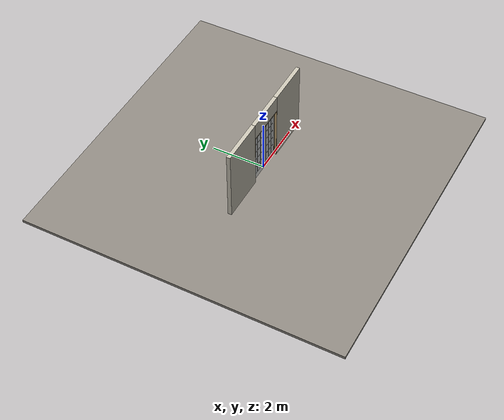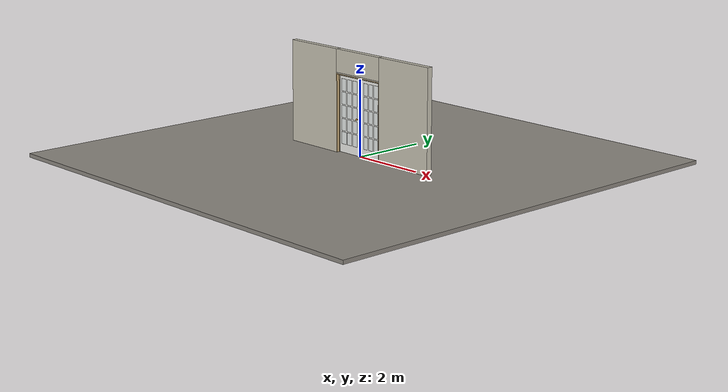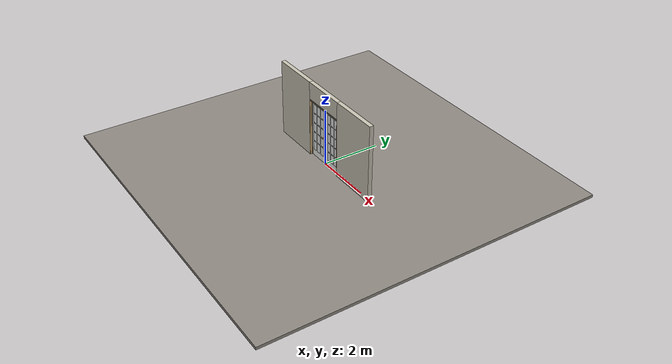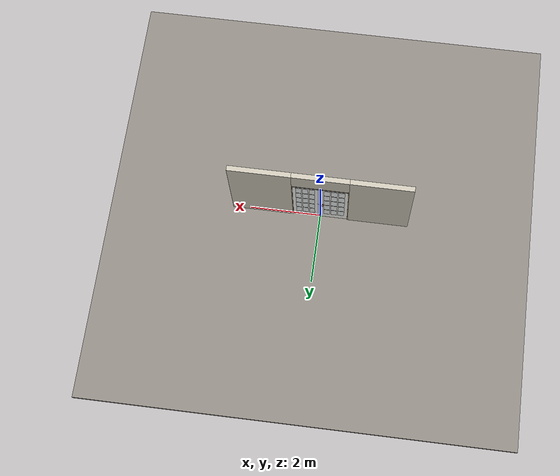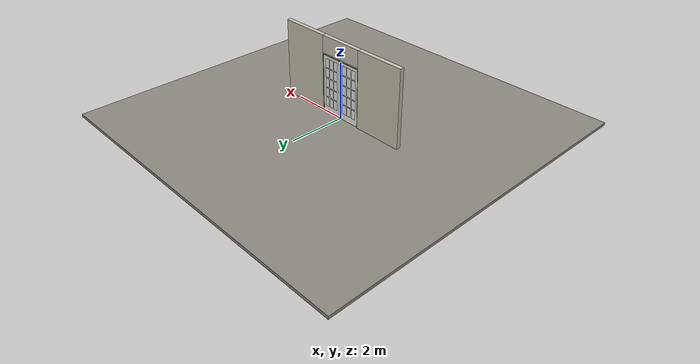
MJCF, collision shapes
<?xml version="1.0" ?>
<mujoco model="db0577_swing_double_full">
  <compiler angle="radian" meshdir="../../hardware" texturedir="../../textures" autolimits="true" inertiafromgeom="false"/>
  <option timestep="0.002" integrator="implicitfast" cone="elliptic" impratio="10" noslip_iterations="3">
    <flag multiccd="enable"/>
  </option>
  <size memory="16M"/>
  <default>
    <geom condim="4" solref="0.005 1" solimp="0.95 0.99 0.001"/>
    <joint solreflimit="0.005 1" solimplimit="0.95 0.99 0.001"/>
    <tendon solreflimit="0.005 1"/>
    <equality solref="0.002 1"/>
  </default>
  <visual>
    <headlight ambient="0.4 0.4 0.4" diffuse="0.7 0.7 0.7" specular="0.2 0.2 0.2"/>
    <quality shadowsize="4096"/>
    <map znear="0.01" zfar="60"/>
  </visual>
  <asset>
    <mesh name="hinge_2af0f4d6ca" file="hinge_2af0f4d6ca.obj"/>
    <mesh name="hinge_jamb_c0c0a62ada" file="hinge_jamb_c0c0a62ada.obj"/>
    <mesh name="knob_d1888f6f03" file="knob_d1888f6f03.obj"/>
    <material name="mat_floor" rgba="0.55 0.53 0.5 1" specular="0.2" shininess="0.15" reflectance="0"/>
    <material name="mat_wall" rgba="0.78 0.76 0.7 1" specular="0.2" shininess="0.1" reflectance="0"/>
    <material name="mat_leaf_a" rgba="0.93 0.93 0.91 1" specular="0.2" shininess="0.42" reflectance="0"/>
    <material name="mat_glass" rgba="0.85 0.92 0.95 0.25" specular="0.2" shininess="0.95" reflectance="0.1"/>
    <material name="mat_hinge" rgba="0.65 0.66 0.68 1" specular="0.74" shininess="0.5" reflectance="0.36"/>
    <material name="mat_op_brass" rgba="0.85 0.66 0.3 1" specular="0.8" shininess="0.75" reflectance="0.4"/>
    <material name="mat_trim" rgba="0.85 0.66 0.3 1" specular="0.8" shininess="0.75" reflectance="0.4"/>
    <material name="mat_bolt" rgba="0.85 0.66 0.3 1" specular="0.8" shininess="0.75" reflectance="0.4"/>
    <material name="mat_leaf_b" rgba="0.93 0.93 0.91 1" specular="0.2" shininess="0.42" reflectance="0"/>
    <material name="mat_frame" rgba="0.82 0.7 0.5 1" specular="0.2" shininess="0.45" reflectance="0"/>
    <material name="mat_astragal" rgba="0.8 0.81 0.83 1" specular="0.8" shininess="0.6" reflectance="0.4"/>
    <texture name="skybox" type="skybox" builtin="gradient" rgb1="0.6 0.7 0.85" rgb2="0.9 0.92 0.95" width="256" height="256"/>
  </asset>
  <worldbody>
    <light name="sun" pos="1.5 -2.5 4" dir="-0.3 0.5 -0.8" directional="true" diffuse="0.8 0.8 0.8" specular="0.3 0.3 0.3" castshadow="true"/>
    <light name="fill" pos="-1.5 2.5 3" dir="0.3 -0.5 -0.7" directional="true" diffuse="0.35 0.35 0.4" castshadow="false"/>
    <camera name="robot_view" pos="0 -2.572687 1.734312" xyaxes="1 0 0 0 0.26963 0.962964" fovy="52"/>
    <camera name="far_view" pos="0 2.511687 1.734312" xyaxes="-1 0 0 0 -0.26963 0.962964" fovy="52"/>
    <camera name="iso" pos="-1.932062 -2.165938 2.141063" xyaxes="0.741536 -0.670913 0 0.242917 0.268487 0.932151" fovy="46"/>
    <camera name="detail_handle" pos="0.1085 -0.8685 1.245" xyaxes="0.97561 0.219512 0 -0.070934 0.315262 0.94635" fovy="38"/>
    <geom name="floor" type="box" size="6 6 0.05" pos="0 0 -0.05" material="mat_floor" group="0" contype="1" conaffinity="1" friction="0.8 0.005 0.0001" density="2400"/>
    <geom name="wall_left" type="box" size="0.85725 0.0725 1.35" pos="-1.64275 -0.0305 1.35" material="mat_wall" group="0" contype="1" conaffinity="1" friction="0.6 0.005 0.0001" density="800"/>
    <geom name="wall_right" type="box" size="0.85725 0.0725 1.35" pos="1.64275 -0.0305 1.35" material="mat_wall" group="0" contype="1" conaffinity="1" friction="0.6 0.005 0.0001" density="800"/>
    <geom name="wall_header" type="box" size="0.7855 0.0725 0.303" pos="0 -0.0305 2.397" material="mat_wall" group="0" contype="1" conaffinity="1" friction="0.6 0.005 0.0001" density="800"/>
    <geom name="hinge_0_jamb" type="mesh" mesh="hinge_jamb_c0c0a62ada" pos="-0.7635 0.029 0.259" quat="0 1 0 0" material="mat_hinge" group="1" contype="0" conaffinity="0" density="7850"/>
    <geom name="hinge_1_jamb" type="mesh" mesh="hinge_jamb_c0c0a62ada" pos="-0.7635 0.029 1.025" quat="0 1 0 0" material="mat_hinge" group="1" contype="0" conaffinity="0" density="7850"/>
    <geom name="hinge_2_jamb" type="mesh" mesh="hinge_jamb_c0c0a62ada" pos="-0.7635 0.029 1.861" quat="0 1 0 0" material="mat_hinge" group="1" contype="0" conaffinity="0" density="7850"/>
    <geom name="hinge_0_jamb_2" type="mesh" mesh="hinge_jamb_c0c0a62ada" pos="0.7635 0.029 0.259" quat="0 0 0 1" material="mat_hinge" group="1" contype="0" conaffinity="0" density="7850"/>
    <geom name="hinge_1_jamb_2" type="mesh" mesh="hinge_jamb_c0c0a62ada" pos="0.7635 0.029 1.025" quat="0 0 0 1" material="mat_hinge" group="1" contype="0" conaffinity="0" density="7850"/>
    <geom name="hinge_2_jamb_2" type="mesh" mesh="hinge_jamb_c0c0a62ada" pos="0.7635 0.029 1.861" quat="0 0 0 1" material="mat_hinge" group="1" contype="0" conaffinity="0" density="7850"/>
    <geom name="jamb_l" type="box" size="0.0095 0.0725 1.0225" pos="-0.776 -0.0305 1.0225" material="mat_frame" group="0" contype="1" conaffinity="1" friction="0.6 0.005 0.0001" density="300"/>
    <geom name="jamb_r" type="box" size="0.0095 0.0725 1.0225" pos="0.776 -0.0305 1.0225" material="mat_frame" group="0" contype="1" conaffinity="1" friction="0.6 0.005 0.0001" density="300"/>
    <geom name="jamb_head" type="box" size="0.7855 0.0725 0.0095" pos="0 -0.0305 2.0545" material="mat_frame" group="0" contype="1" conaffinity="1" friction="0.6 0.005 0.0001" density="300"/>
    <geom name="head_stud" type="box" size="0.7855 0.0725 0.015" pos="0 -0.0305 2.079" material="mat_wall" group="0" contype="1" conaffinity="1" friction="0.6 0.005 0.0001" density="500"/>
    <geom name="stop_l" type="box" size="0.015 0.006 1.0225" pos="-0.7515 -0.0285 1.0225" material="mat_frame" group="0" contype="1" conaffinity="1" friction="0.6 0.005 0.0001" density="300"/>
    <geom name="stop_r" type="box" size="0.015 0.006 1.0225" pos="0.7515 -0.0285 1.0225" material="mat_frame" group="0" contype="1" conaffinity="1" friction="0.6 0.005 0.0001" density="300"/>
    <geom name="stop_head" type="box" size="0.7665 0.006 0.015" pos="0 -0.0285 2.03" material="mat_frame" group="0" contype="1" conaffinity="1" friction="0.6 0.005 0.0001" density="300"/>
    <site name="approach_point" pos="0 -1.5 0" quat="1 0 0 0" size="0.05" rgba="0.2 0.9 0.2 0.5" group="4"/>
    <site name="goal_point" pos="0 1.5 0" quat="1 0 0 0" size="0.05" rgba="0.2 0.9 0.2 0.5" group="4"/>
    <site name="door_plane_center" pos="0 0 1.0225" quat="1 0 0 0" size="0.02" rgba="0.2 0.9 0.2 0.5" group="4"/>
    <site name="approach_point_2" pos="0 -1.5 0" quat="1 0 0 0" size="0.05" rgba="0.2 0.9 0.2 0.5" group="4"/>
    <site name="goal_point_2" pos="0 1.5 0" quat="1 0 0 0" size="0.05" rgba="0.2 0.9 0.2 0.5" group="4"/>
    <site name="door_plane_center_2" pos="0 0 1.0225" quat="1 0 0 0" size="0.02" rgba="0.2 0.9 0.2 0.5" group="4"/>
    <site name="approach_point_3" pos="0 -1.5 0" quat="1 0 0 0" size="0.05" rgba="0.2 0.9 0.2 0.5" group="4"/>
    <site name="goal_point_3" pos="0 1.5 0" quat="1 0 0 0" size="0.05" rgba="0.2 0.9 0.2 0.5" group="4"/>
    <site name="door_plane_center_3" pos="0 0 1.0225" quat="1 0 0 0" size="0.02" rgba="0.2 0.9 0.2 0.5" group="4"/>
    <body name="leaf_a" pos="-0.7665 0 0">
      <inertial pos="0.367733 0.00068 1.026166" mass="22.820276" quat="0.500854 0.498462 -0.501514 0.499163" diaginertia="1.200973549 7.923948674 9.116973352"/>
      <joint name="leaf_a_hinge" type="hinge" axis="0 0 1" pos="0.003 0.029 0" limited="true" range="0 1.570796" damping="0.173726" frictionloss="0.287861" armature="0.02"/>
      <geom name="leaf_a_slab" type="box" size="0.381 0.022 1.016" pos="0.384 0 1.025" material="mat_leaf_a" group="0" contype="1" conaffinity="1" friction="0.4 0.005 0.0001" density="1"/>
      <geom name="leaf_a_glass_0" type="box" size="0.087 0.0228 0.158688" pos="0.18 0 0.391208" material="mat_glass" group="1" contype="0" conaffinity="0" density="1"/>
      <geom name="leaf_a_glass_1" type="box" size="0.087 0.0228 0.158688" pos="0.384 0 0.391208" material="mat_glass" group="1" contype="0" conaffinity="0" density="1"/>
      <geom name="leaf_a_glass_2" type="box" size="0.087 0.0228 0.158688" pos="0.588 0 0.391208" material="mat_glass" group="1" contype="0" conaffinity="0" density="1"/>
      <geom name="leaf_a_glass_3" type="box" size="0.087 0.0228 0.158688" pos="0.18 0 0.738584" material="mat_glass" group="1" contype="0" conaffinity="0" density="1"/>
      <geom name="leaf_a_glass_4" type="box" size="0.087 0.0228 0.158688" pos="0.384 0 0.738584" material="mat_glass" group="1" contype="0" conaffinity="0" density="1"/>
      <geom name="leaf_a_glass_5" type="box" size="0.087 0.0228 0.158688" pos="0.588 0 0.738584" material="mat_glass" group="1" contype="0" conaffinity="0" density="1"/>
      <geom name="leaf_a_glass_6" type="box" size="0.087 0.0228 0.158688" pos="0.18 0 1.08596" material="mat_glass" group="1" contype="0" conaffinity="0" density="1"/>
      <geom name="leaf_a_glass_7" type="box" size="0.087 0.0228 0.158688" pos="0.384 0 1.08596" material="mat_glass" group="1" contype="0" conaffinity="0" density="1"/>
      <geom name="leaf_a_glass_8" type="box" size="0.087 0.0228 0.158688" pos="0.588 0 1.08596" material="mat_glass" group="1" contype="0" conaffinity="0" density="1"/>
      <geom name="leaf_a_glass_9" type="box" size="0.087 0.0228 0.158688" pos="0.18 0 1.433336" material="mat_glass" group="1" contype="0" conaffinity="0" density="1"/>
      <geom name="leaf_a_glass_10" type="box" size="0.087 0.0228 0.158688" pos="0.384 0 1.433336" material="mat_glass" group="1" contype="0" conaffinity="0" density="1"/>
      <geom name="leaf_a_glass_11" type="box" size="0.087 0.0228 0.158688" pos="0.588 0 1.433336" material="mat_glass" group="1" contype="0" conaffinity="0" density="1"/>
      <geom name="leaf_a_glass_12" type="box" size="0.087 0.0228 0.158688" pos="0.18 0 1.780712" material="mat_glass" group="1" contype="0" conaffinity="0" density="1"/>
      <geom name="leaf_a_glass_13" type="box" size="0.087 0.0228 0.158688" pos="0.384 0 1.780712" material="mat_glass" group="1" contype="0" conaffinity="0" density="1"/>
      <geom name="leaf_a_glass_14" type="box" size="0.087 0.0228 0.158688" pos="0.588 0 1.780712" material="mat_glass" group="1" contype="0" conaffinity="0" density="1"/>
      <geom name="hinge_0" type="mesh" mesh="hinge_2af0f4d6ca" pos="0.003 0.029 0.259" quat="0 1 0 0" material="mat_hinge" group="1" contype="0" conaffinity="0" density="7850"/>
      <geom name="hinge_1" type="mesh" mesh="hinge_2af0f4d6ca" pos="0.003 0.029 1.025" quat="0 1 0 0" material="mat_hinge" group="1" contype="0" conaffinity="0" density="7850"/>
      <geom name="hinge_2" type="mesh" mesh="hinge_2af0f4d6ca" pos="0.003 0.029 1.861" quat="0 1 0 0" material="mat_hinge" group="1" contype="0" conaffinity="0" density="7850"/>
      <geom name="leaf_a_latch_bolt_faceplate" type="box" size="0.0006 0.01235 0.0267" pos="0.7644 0 0.965" material="mat_bolt" group="1" contype="0" conaffinity="0" density="8500"/>
      <site name="leaf_a_edge_mid" pos="0.765 0 1.016" quat="1 0 0 0" size="0.02" rgba="0.2 0.9 0.2 0.5" group="4"/>
      <body name="leaf_a_handle" pos="0.695 0 0.965">
        <inertial pos="0 0 0" mass="1.151952" quat="0.5 -0.5 0.5 -0.5" diaginertia="0.000312514 0.004264603 0.004264603"/>
        <joint name="leaf_a_handle_hinge" type="hinge" axis="0 -1 0" limited="true" range="0 0.87" damping="0.143614" frictionloss="0.038" stiffness="0.5" springref="-0.5" armature="0.01"/>
        <geom name="leaf_a_handle_spindle" type="cylinder" size="0.006 0.03" pos="0 0 0" quat="0.707107 -0.707107 0 0" material="mat_op_brass" group="1" contype="0" conaffinity="0" density="7850"/>
        <geom name="leaf_a_handle_knob_n" type="mesh" mesh="knob_d1888f6f03" pos="0 -0.022 0" quat="0.707107 0.707107 0 0" material="mat_op_brass" group="1" contype="0" conaffinity="0" density="3000"/>
        <geom name="leaf_a_handle_knob_col_n" type="sphere" size="0.0243" pos="0 -0.0685 0" material="mat_op_brass" group="0" contype="1" conaffinity="1" friction="0.9 0.01 0.0001" density="3000"/>
        <geom name="leaf_a_handle_knob_neck_n" type="cylinder" size="0.011 0.012" pos="0 -0.034 0" quat="0.707107 -0.707107 0 0" material="mat_op_brass" group="3" contype="1" conaffinity="1" rgba="0.8 0.3 0.3 0.25" friction="0.6 0.005 0.0001" density="3000"/>
        <geom name="leaf_a_handle_knob_p" type="mesh" mesh="knob_d1888f6f03" pos="0 0.022 0" quat="-0.707107 0.707107 0 0" material="mat_op_brass" group="1" contype="0" conaffinity="0" density="3000"/>
        <geom name="leaf_a_handle_knob_col_p" type="sphere" size="0.0243" pos="0 0.0685 0" material="mat_op_brass" group="0" contype="1" conaffinity="1" friction="0.9 0.01 0.0001" density="3000"/>
        <geom name="leaf_a_handle_knob_neck_p" type="cylinder" size="0.011 0.012" pos="0 0.034 0" quat="0.707107 -0.707107 0 0" material="mat_op_brass" group="3" contype="1" conaffinity="1" rgba="0.8 0.3 0.3 0.25" friction="0.6 0.005 0.0001" density="3000"/>
        <site name="leaf_a_handle_grip_n" pos="0 -0.0685 0" quat="1 0 0 0" size="0.012" rgba="0.2 0.9 0.2 0.5" group="4"/>
        <site name="leaf_a_handle_grip_p" pos="0 0.0685 0" quat="1 0 0 0" size="0.012" rgba="0.2 0.9 0.2 0.5" group="4"/>
      </body>
      <body name="leaf_a_latch_bolt" pos="0.765 0 0.965">
        <inertial pos="-0.00865 0 0" mass="0.041419" quat="0.92388 -0.382683 0 0" diaginertia="0.000000798 0.000005598 0.000005598"/>
        <joint name="leaf_a_latch_bolt_slide" type="slide" axis="-1 0 0" limited="true" range="0 0.0127" damping="2" frictionloss="0.3" stiffness="300" springref="-0.008333" armature="0.1"/>
        <geom name="leaf_a_latch_bolt_capsule" type="capsule" size="0.00635 0.015" pos="-0.00865 0 0" quat="0.707107 0 0.707107 0" material="mat_bolt" group="0" contype="1" conaffinity="1" friction="0.2 0.005 0.0001" density="8500"/>
      </body>
    </body>
    <body name="leaf_b" pos="0.7665 0 0">
      <inertial pos="-0.444785 -0.006881 1.0237" mass="22.172603" quat="0.491239 0.510524 -0.489208 0.50865" diaginertia="1.512829593 7.61874499 9.122233436"/>
      <joint name="leaf_b_hinge" type="hinge" axis="0 0 -1" pos="-0.003 0.029 0" limited="true" range="0 0.001" damping="0.173726" frictionloss="0.287861" armature="0.02"/>
      <geom name="leaf_b_edge_965_wall_n" type="box" size="0.03 0.007075 0.0167" pos="-0.735 -0.014925 0.965" material="mat_leaf_b" group="0" contype="1" conaffinity="1" friction="0.6 0.005 0.0001" density="1"/>
      <geom name="leaf_b_edge_965_wall_p" type="box" size="0.03 0.008 0.0167" pos="-0.735 0.01585 0.965" material="mat_leaf_b" group="0" contype="1" conaffinity="1" friction="0.6 0.005 0.0001" density="1"/>
      <geom name="leaf_b_edge_965_ramp" type="box" size="0.03 0.01649 0.0167" pos="-0.730861 0.026388 0.965" quat="0.977148 0 0 -0.212558" material="mat_leaf_b" group="0" contype="1" conaffinity="1" friction="0.12 0.005 0.0001" density="1"/>
      <geom name="leaf_b_edge_965_back" type="box" size="0.02165 0.00785 0.0167" pos="-0.72665 0 0.965" material="mat_leaf_b" group="0" contype="1" conaffinity="1" friction="0.6 0.005 0.0001" density="1"/>
      <geom name="leaf_b_edge_seg_0" type="box" size="0.03 0.022 0.46965" pos="-0.735 0 0.47865" material="mat_leaf_b" group="0" contype="1" conaffinity="1" friction="0.6 0.005 0.0001" density="1"/>
      <geom name="leaf_b_edge_seg_1" type="box" size="0.03 0.022 0.52965" pos="-0.735 0 1.51135" material="mat_leaf_b" group="0" contype="1" conaffinity="1" friction="0.6 0.005 0.0001" density="1"/>
      <geom name="leaf_b_slab" type="box" size="0.351 0.022 1.016" pos="-0.354 0 1.025" material="mat_leaf_b" group="0" contype="1" conaffinity="1" friction="0.4 0.005 0.0001" density="1"/>
      <geom name="leaf_b_glass_0" type="box" size="0.077 0.0228 0.158688" pos="-0.17 0 0.391208" material="mat_glass" group="1" contype="0" conaffinity="0" density="1"/>
      <geom name="leaf_b_glass_1" type="box" size="0.077 0.0228 0.158688" pos="-0.354 0 0.391208" material="mat_glass" group="1" contype="0" conaffinity="0" density="1"/>
      <geom name="leaf_b_glass_2" type="box" size="0.077 0.0228 0.158688" pos="-0.538 0 0.391208" material="mat_glass" group="1" contype="0" conaffinity="0" density="1"/>
      <geom name="leaf_b_glass_3" type="box" size="0.077 0.0228 0.158688" pos="-0.17 0 0.738584" material="mat_glass" group="1" contype="0" conaffinity="0" density="1"/>
      <geom name="leaf_b_glass_4" type="box" size="0.077 0.0228 0.158688" pos="-0.354 0 0.738584" material="mat_glass" group="1" contype="0" conaffinity="0" density="1"/>
      <geom name="leaf_b_glass_5" type="box" size="0.077 0.0228 0.158688" pos="-0.538 0 0.738584" material="mat_glass" group="1" contype="0" conaffinity="0" density="1"/>
      <geom name="leaf_b_glass_6" type="box" size="0.077 0.0228 0.158688" pos="-0.17 0 1.08596" material="mat_glass" group="1" contype="0" conaffinity="0" density="1"/>
      <geom name="leaf_b_glass_7" type="box" size="0.077 0.0228 0.158688" pos="-0.354 0 1.08596" material="mat_glass" group="1" contype="0" conaffinity="0" density="1"/>
      <geom name="leaf_b_glass_8" type="box" size="0.077 0.0228 0.158688" pos="-0.538 0 1.08596" material="mat_glass" group="1" contype="0" conaffinity="0" density="1"/>
      <geom name="leaf_b_glass_9" type="box" size="0.077 0.0228 0.158688" pos="-0.17 0 1.433336" material="mat_glass" group="1" contype="0" conaffinity="0" density="1"/>
      <geom name="leaf_b_glass_10" type="box" size="0.077 0.0228 0.158688" pos="-0.354 0 1.433336" material="mat_glass" group="1" contype="0" conaffinity="0" density="1"/>
      <geom name="leaf_b_glass_11" type="box" size="0.077 0.0228 0.158688" pos="-0.538 0 1.433336" material="mat_glass" group="1" contype="0" conaffinity="0" density="1"/>
      <geom name="leaf_b_glass_12" type="box" size="0.077 0.0228 0.158688" pos="-0.17 0 1.780712" material="mat_glass" group="1" contype="0" conaffinity="0" density="1"/>
      <geom name="leaf_b_glass_13" type="box" size="0.077 0.0228 0.158688" pos="-0.354 0 1.780712" material="mat_glass" group="1" contype="0" conaffinity="0" density="1"/>
      <geom name="leaf_b_glass_14" type="box" size="0.077 0.0228 0.158688" pos="-0.538 0 1.780712" material="mat_glass" group="1" contype="0" conaffinity="0" density="1"/>
      <geom name="hinge_0_2" type="mesh" mesh="hinge_2af0f4d6ca" pos="-0.003 0.029 0.259" quat="0 0 0 1" material="mat_hinge" group="1" contype="0" conaffinity="0" density="7850"/>
      <geom name="hinge_1_2" type="mesh" mesh="hinge_2af0f4d6ca" pos="-0.003 0.029 1.025" quat="0 0 0 1" material="mat_hinge" group="1" contype="0" conaffinity="0" density="7850"/>
      <geom name="hinge_2_2" type="mesh" mesh="hinge_2af0f4d6ca" pos="-0.003 0.029 1.861" quat="0 0 0 1" material="mat_hinge" group="1" contype="0" conaffinity="0" density="7850"/>
      <geom name="astragal" type="box" size="0.02 0.008 0.996" pos="-0.769 -0.03 1.016" material="mat_astragal" group="0" contype="1" conaffinity="1" friction="0.6 0.005 0.0001" density="2700"/>
      <site name="leaf_b_edge_mid" pos="-0.765 0 1.016" quat="1 0 0 0" size="0.02" rgba="0.2 0.9 0.2 0.5" group="4"/>
    </body>
  </worldbody>
  <tendon>
    <fixed name="leaf_a_latch_bolt_coupling" limited="true" range="0 10">
      <joint joint="leaf_a_latch_bolt_slide" coef="1"/>
      <joint joint="leaf_a_handle_hinge" coef="-0.015679"/>
    </fixed>
  </tendon>
  <sensor>
    <jointpos name="leaf_a_hinge_pos" joint="leaf_a_hinge"/>
    <jointvel name="leaf_a_hinge_vel" joint="leaf_a_hinge"/>
    <jointpos name="leaf_a_handle_hinge_pos" joint="leaf_a_handle_hinge"/>
    <jointvel name="leaf_a_handle_hinge_vel" joint="leaf_a_handle_hinge"/>
    <jointpos name="leaf_a_latch_bolt_slide_pos" joint="leaf_a_latch_bolt_slide"/>
    <jointvel name="leaf_a_latch_bolt_slide_vel" joint="leaf_a_latch_bolt_slide"/>
    <jointpos name="leaf_b_hinge_pos" joint="leaf_b_hinge"/>
    <jointvel name="leaf_b_hinge_vel" joint="leaf_b_hinge"/>
  </sensor>
</mujoco>
